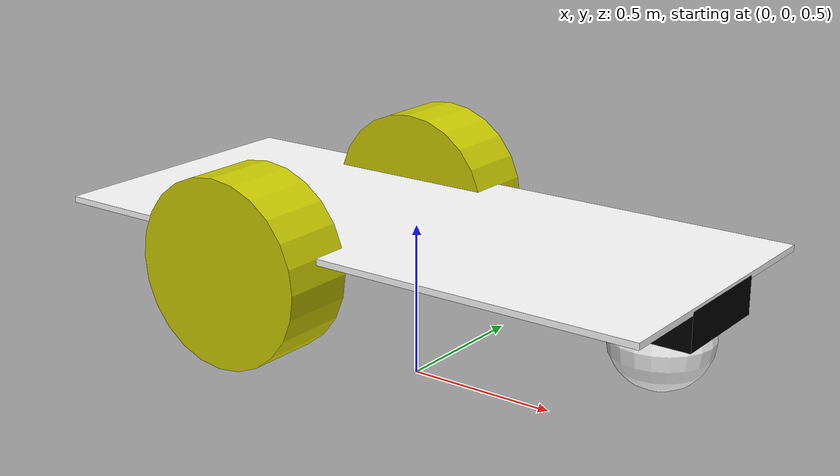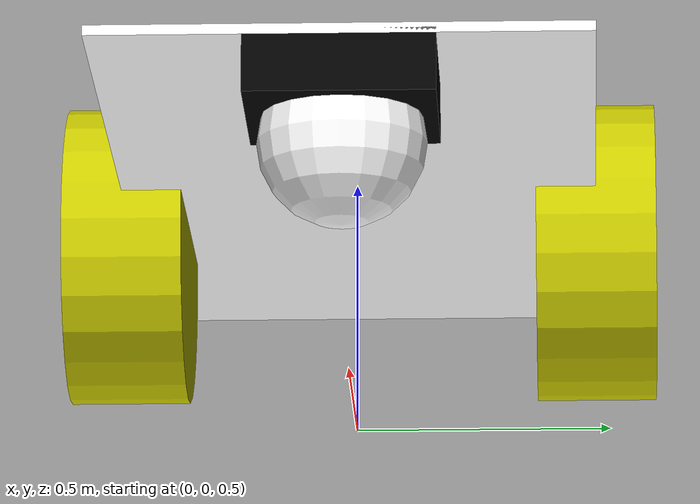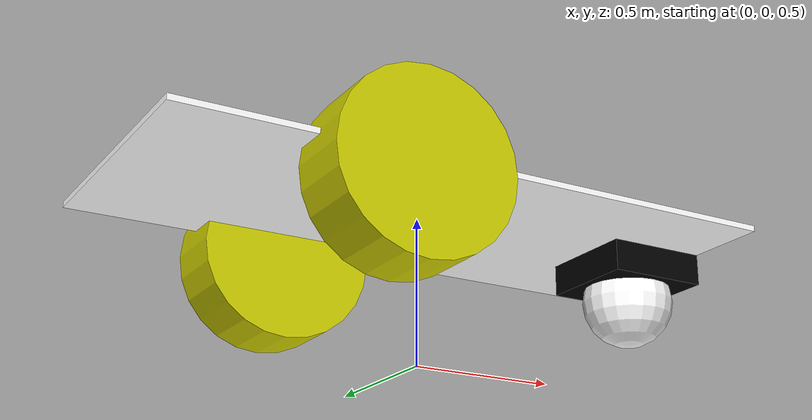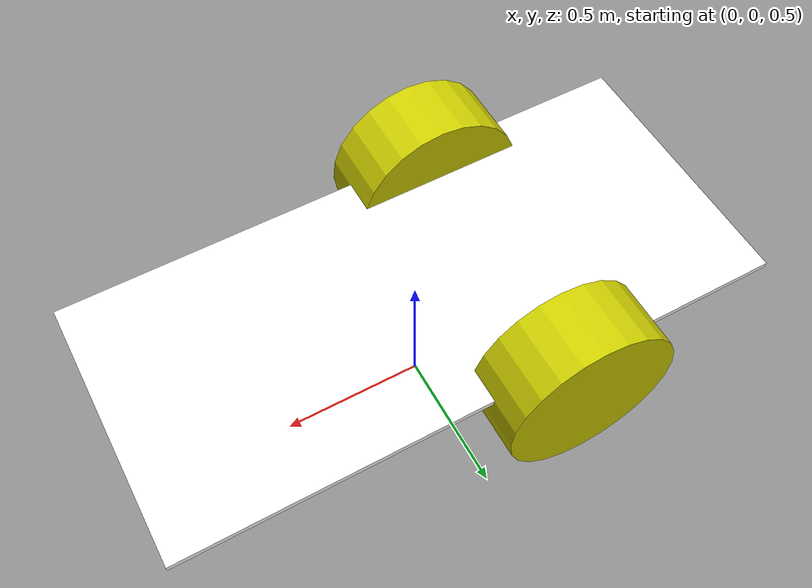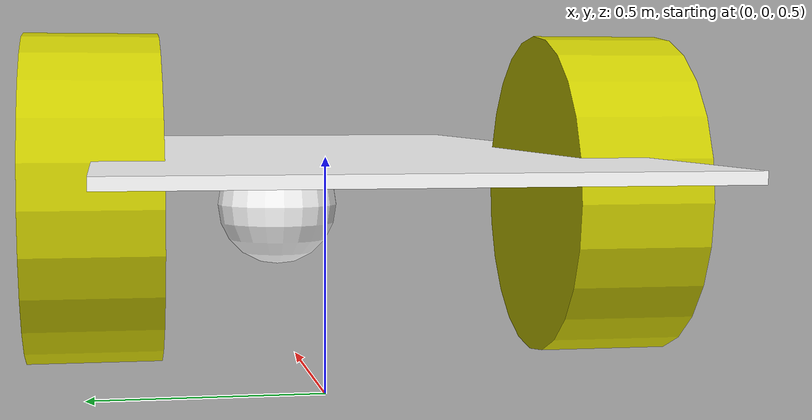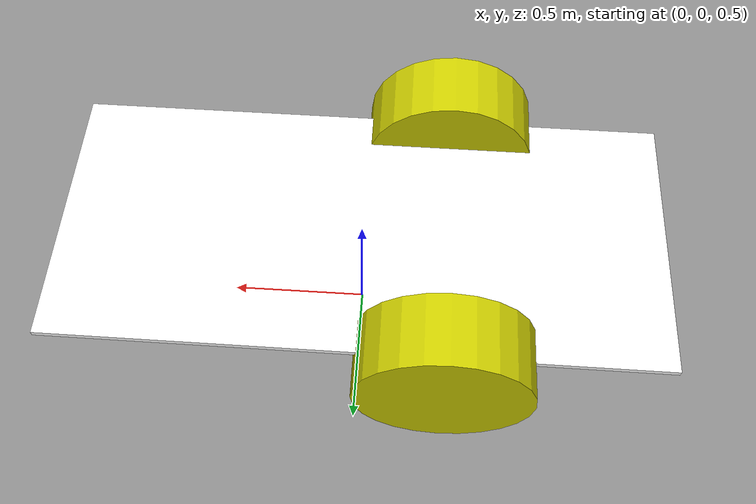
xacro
<?xml version="1.0"?>
<robot xmlns:xacro="http://www.ros.org/wiki/xacro" name="batmobil">

    <!-- Arguments -->
    <xacro:arg name="sim_mode" default="true" />

    <!-- Includes -->
    <xacro:include filename="core_model.xacro" />
    <xacro:include filename="materials.xacro" />
    <xacro:include filename="gz_control.xacro" />

    <!-- Macro Invocation -->
    <xacro:robot />

</robot>

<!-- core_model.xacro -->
<robot xmlns:xacro="http://www.ros.org/wiki/xacro" name="batmobil">

  <xacro:macro name="robot">

  <!-- constants for robot dimensions-->
  <xacro:property name="PI" value="3.1415926535897931"/>
  <xacro:property name="base_mass" value="0.3" /> <!-- arbitrary value for base mass -->
  <xacro:property name="base_width" value="2.10" />
  <xacro:property name="base_length" value="0.95" />
  <xacro:property name="base_height" value="0.02" />
  <xacro:property name="wheel_mass" value="0.3" /> <!-- arbitrary value for wheel mass -->
  <xacro:property name="wheel_len" value="0.24" />
  <xacro:property name="wheel_radius" value="0.3" />
  <xacro:property name="caster_base_mass" value="0.05" />
  <xacro:property name="caster_base_width" value="0.36" />
  <xacro:property name="caster_base_length" value="0.36" />
  <xacro:property name="caster_base_height" value="0.12" />
  <xacro:property name="caster_wheel_mass" value="0.05" /> <!-- arbitrary value for caster wheel mass -->
  <xacro:property name="caster_wheel_radius" value="0.16" />

  <link name="dummy_link"/>

  <joint name="fixed_base_joint" type="fixed">
    <parent link="dummy_link"/>
    <child link="base_link"/>
    <origin xyz="0 0 1" rpy="0 0 0"/>
  </joint>

    <!-- Base Link -->
  <link name="base_link">
    <collision>
      <origin xyz="0 0 0" rpy="0 0 0"/>
      <geometry>
        <box size="${base_width} ${base_length} ${base_height}"/>
      </geometry>
    </collision>

    <visual>
      <origin xyz="0 0 ${base_height/2}" rpy="0 0 0"/>
      <geometry>
        <box size="${base_width} ${base_length} ${base_height}"/>
      </geometry>
      <material name="white"/>
    </visual>

    <inertial>
      <origin xyz="0 0 0" rpy="0 0 0"/>
      <mass value="${base_mass}"/>
      <inertia
        ixx="${base_mass / 12.0 * (base_length*base_length + base_height*base_height)}" ixy="0.0" ixz="0.0"
        iyy="${base_mass / 12.0 * (base_height*base_height + base_width*base_width)}" iyz="0.0"
        izz="${base_mass / 12.0 * (base_width*base_width + base_length*base_length)}"/>
      </inertial>
    </link>

    <joint name="left_wheel_joint" type="continuous">
      <parent link="base_link"/>
      <child link="left_wheel"/>
      <origin xyz="-0.3 -${base_length/2} -0.06" rpy="0 0 0"/>
      <axis xyz="0 1 0"/>
      <dynamics damping="0.2"/>
      <limit effort="100" velocity="1.0"/>
    </joint>

    <!-- left wheel Link -->
    <link name="left_wheel">
      <collision>
        <origin xyz="0 0 0" rpy="${PI/2} 0 0"/>
        <geometry>
          <cylinder length="${wheel_len}" radius="${wheel_radius}"/>
        </geometry>
      </collision>

      <visual>
        <origin xyz="0 0 0" rpy="${PI/2} 0 0"/>
        <geometry>
          <cylinder length="${wheel_len}" radius="${wheel_radius}"/>
        </geometry>
        <material name="yellow"/>
      </visual>

      <inertial>
        <origin xyz="0 0 0" rpy="${PI/2} 0 0"/>
        <mass value="${wheel_mass}"/>
        <inertia
          ixx="${wheel_mass / 12.0 * (3*wheel_radius*wheel_radius + wheel_len*wheel_len)}" ixy="0.0" ixz="0.0"
          iyy="${wheel_mass / 12.0 * (3*wheel_radius*wheel_radius + wheel_len*wheel_len)}" iyz="0.0"
          izz="${wheel_mass / 2.0 * wheel_radius*wheel_radius}"/>
        </inertial>
      </link>

    <joint name="right_wheel_joint" type="continuous">
      <parent link="base_link"/>
      <child link="right_wheel"/>
      <origin xyz="-0.3 ${base_length/2} -0.06" rpy="0 0 0"/>
      <axis xyz="0 1 0"/>
      <dynamics damping="0.2"/>
      <limit effort="100" velocity="1.0"/>
    </joint>

    <!-- right wheel Link -->
    <link name="right_wheel">
      <collision>
        <origin xyz="0 0 0" rpy="${PI/2} 0 0"/>
        <geometry>
          <cylinder length="${wheel_len}" radius="${wheel_radius}"/>
        </geometry>
      </collision>

      <visual>
        <origin xyz="0 0 0" rpy="${PI/2} 0 0"/>
        <geometry>
          <cylinder length="${wheel_len}" radius="${wheel_radius}"/>
        </geometry>
        <material name="yellow"/>
      </visual>

      <inertial>
        <origin xyz="0 0 0" rpy="${PI/2} 0 0"/>
        <mass value="${wheel_mass}"/>
        <inertia
          ixx="${wheel_mass / 12.0 * (3*wheel_radius*wheel_radius + wheel_len*wheel_len)}" ixy="0.0" ixz="0.0"
          iyy="${wheel_mass / 12.0 * (3*wheel_radius*wheel_radius + wheel_len*wheel_len)}" iyz="0.0"
          izz="${wheel_mass / 2.0 * wheel_radius*wheel_radius}"/>
        </inertial>
      </link>

    <joint name="caster_base_joint" type="fixed">
      <parent link="base_link"/>
      <child link="caster_base"/>
      <origin xyz="0.87 0 -0.06" rpy="0 0 0"/>
    </joint>

    <!-- caster base -->
    <link name="caster_base">
    <collision>
      <origin xyz="0 0 0" rpy="0 0 0"/>
      <geometry>
        <box size="${caster_base_width} ${caster_base_length} ${base_height}"/>
      </geometry>
    </collision>

    <visual>
      <origin xyz="0 0 ${base_height/2}" rpy="0 0 0"/>
      <geometry>
        <box size="${caster_base_width} ${caster_base_length} ${caster_base_height}"/>
      </geometry>
      <material name="black"/>
    </visual>

    <inertial>
      <origin xyz="0 0 0" rpy="0 0 0"/>
      <mass value="${caster_base_mass}"/>
      <inertia
        ixx="${base_mass / 12.0 * (base_length*base_length + base_height*base_height)}" ixy="0.0" ixz="0.0"
        iyy="${base_mass / 12.0 * (base_height*base_height + base_width*base_width)}" iyz="0.0"
        izz="${base_mass / 12.0 * (base_width*base_width + base_length*base_length)}"/>
      </inertial>
    </link>

    <joint name="caster_wheel_joint" type="fixed">
      <parent link="caster_base"/>
      <child link="caster_wheel"/>
      <origin xyz="0 0 -0.10" rpy="0 0 0"/>
    </joint>

    <!-- caster rear wheel Link -->
    <link name="caster_wheel">
      <collision>
        <origin xyz="0 0 0" rpy="0 0 0"/>
        <geometry>
          <sphere radius="${caster_wheel_radius}"/>
        </geometry>
      </collision>

      <visual>
        <origin xyz="0 0 0" rpy="0 0 0"/>
        <geometry>
          <sphere radius="${caster_wheel_radius}"/>
        </geometry>
        <material name="white"/>
      </visual>

      <inertial>
        <origin xyz="0 0 0" rpy="0 0 0"/>
        <mass value="${caster_wheel_mass}"/>
        <inertia
          ixx="${caster_wheel_mass * 0.4 * (caster_wheel_radius * caster_wheel_radius)}" ixy="0.0" ixz="0.0"
          iyy="${caster_wheel_mass * 0.4 * (caster_wheel_radius * caster_wheel_radius)}" iyz="0.0"
          izz="${caster_wheel_mass * 0.4 * (caster_wheel_radius * caster_wheel_radius)}"/>
        </inertial>
      </link>

  </xacro:macro>

</robot>

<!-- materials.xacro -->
<robot>

<!-- Material Color -->

  <material name="blue">
    <color rgba="0 0 0.8 1"/>
  </material>

  <material name="yellow">
    <color rgba="0.8 0.8 0.0 1.0"/>
  </material>

  <material name="white">
    <color rgba="1 1 1 1"/>
  </material>

  <material name="black">
    <color rgba="0 0 0 1"/>
  </material>

  <material name="red">
    <color rgba="0.8 0.0 0.0 1.0"/>
  </material>

  <material name="green">
  <color rgba="0.0 1.0 0.0 1.0"/>
  </material>

</robot>
